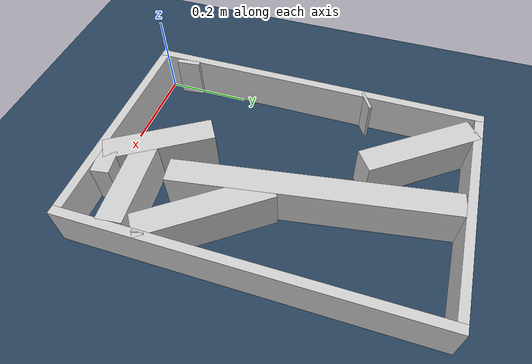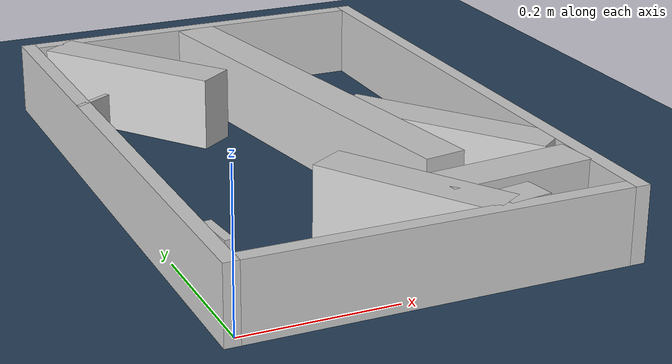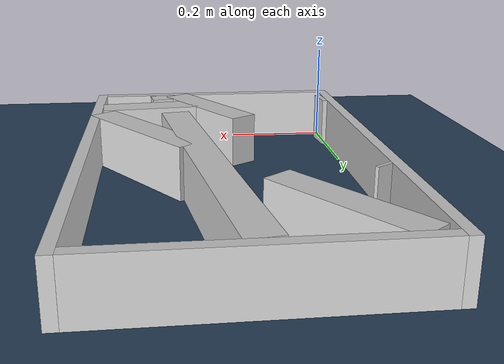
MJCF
<?xml version="1.0" ?>
<mujoco model="generated_real_template">
  <compiler angle="degree"/>
  <option timestep="0.002" integrator="implicitfast" iterations="100" cone="elliptic"/>
  <default>
    <geom density="1"/>
  </default>
  <asset>
    <texture builtin="gradient" height="3072" rgb1="0.3 0.5 0.7" rgb2="0 0 0" type="skybox" width="512"/>
    <texture builtin="checker" height="300" mark="edge" markrgb="0.8 0.8 0.8" name="groundplane" rgb1="0.2 0.3 0.4" rgb2="0.1 0.2 0.3" type="2d" width="300"/>
    <material name="groundplane" reflectance="0.2" texrepeat="5 5" texture="groundplane" texuniform="true"/>
  </asset>
  <worldbody>
    <light dir="0 0 -1" directional="true" pos="0 0 1.5"/>
    <geom name="floor" type="plane" condim="4" friction="0.5 0.005 0.001" material="groundplane" size="0 0 0.05"/>
    <body name="walls">
      <geom name="wall_boundary_left" type="box" condim="4" friction="1.0 0.005 0.0001" rgba="0.8 0.8 0.8 1" pos="-0.010000 0.387500 0.050000" euler="0 0 0.000000" size="0.010000 0.407500 0.050000"/>
      <geom name="wall_boundary_right" type="box" condim="4" friction="1.0 0.005 0.0001" rgba="0.8 0.8 0.8 1" pos="0.500000 0.387500 0.050000" euler="0 0 0.000000" size="0.010000 0.407500 0.050000"/>
      <geom name="wall_boundary_bottom" type="box" condim="4" friction="1.0 0.005 0.0001" rgba="0.8 0.8 0.8 1" pos="0.245000 -0.010000 0.050000" euler="0 0 0.000000" size="0.245000 0.010000 0.050000"/>
      <geom name="wall_boundary_top" type="box" condim="4" friction="1.0 0.005 0.0001" rgba="0.8 0.8 0.8 1" pos="0.245000 0.785000 0.050000" euler="0 0 0.000000" size="0.245000 0.010000 0.050000"/>
      <geom name="wall_inner_1_1" type="box" condim="4" friction="1.0 0.005 0.0001" rgba="0.8 0.8 0.8 1" pos="0.360019 0.020323 0.050000" euler="0 0 98.743896" size="0.020562 0.028500 0.050000"/>
      <geom name="wall_inner_1_2" type="box" condim="4" friction="1.0 0.005 0.0001" rgba="0.8 0.8 0.8 1" pos="0.291366 0.466681 0.050000" euler="0 0 98.743896" size="0.311945 0.028500 0.050000"/>
      <geom name="wall_inner_2_1" type="box" condim="4" friction="1.0 0.005 0.0001" rgba="0.8 0.8 0.8 1" pos="0.111877 0.664093 0.050000" euler="0 0 -53.869308" size="0.137317 0.028500 0.050000"/>
      <geom name="wall_inner_2_2" type="box" condim="4" friction="1.0 0.005 0.0001" rgba="0.8 0.8 0.8 1" pos="0.400455 0.268799 0.050000" euler="0 0 -53.869308" size="0.146745 0.028500 0.050000"/>
      <geom name="wall_inner_3_1" type="box" condim="4" friction="1.0 0.005 0.0001" rgba="0.8 0.8 0.8 1" pos="0.391399 0.094934 0.050000" euler="0 0 -174.872933" size="0.098997 0.028500 0.050000"/>
      <geom name="wall_inner_3_2" type="box" condim="4" friction="1.0 0.005 0.0001" rgba="0.8 0.8 0.8 1" pos="0.006147 0.060368 0.050000" euler="0 0 -174.872933" size="0.006172 0.028500 0.050000"/>
      <geom name="wall_inner_4_1" type="box" condim="4" friction="1.0 0.005 0.0001" rgba="0.8 0.8 0.8 1" pos="0.266765 0.104055 0.050000" euler="0 0 121.961099" size="0.122647 0.028500 0.050000"/>
      <geom name="wall_inner_4_2" type="box" condim="4" friction="1.0 0.005 0.0001" rgba="0.8 0.8 0.8 1" pos="0.006004 0.521991 0.050000" euler="0 0 121.961099" size="0.003445 0.028500 0.050000"/>
    </body>
  </worldbody>
</mujoco>
